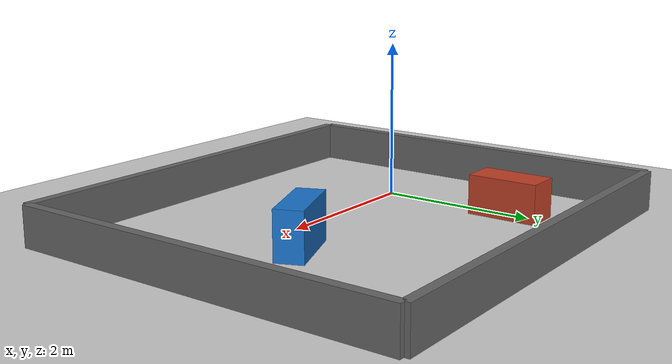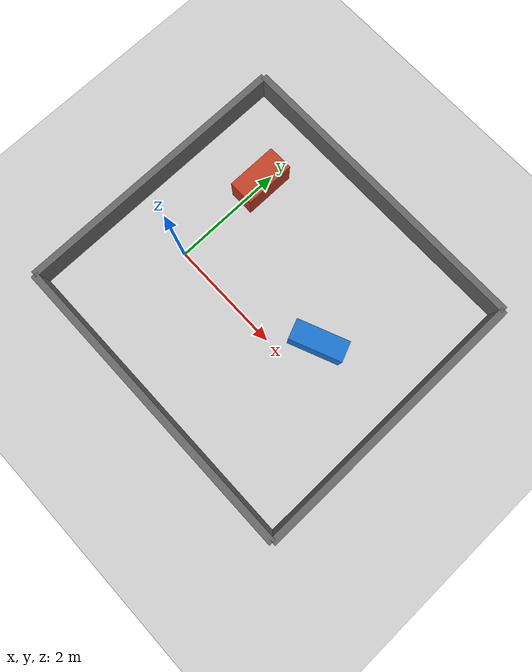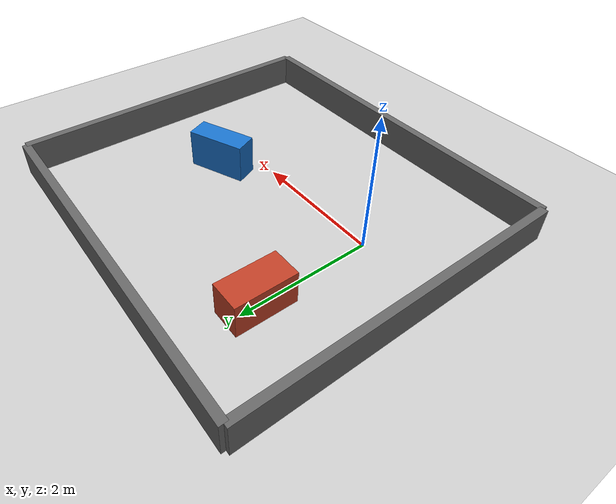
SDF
<?xml version="1.0"?>
<sdf version="1.7">
  <world name="default">
    <include>
      <uri>model://ground_plane</uri>
    </include>
    <include>
      <uri>model://sun</uri>
    </include>

    <gravity>0 0 -9.8</gravity>
    <physics type="ode">
      <max_step_size>0.01</max_step_size>
      <real_time_factor>1</real_time_factor>
      <real_time_update_rate>100</real_time_update_rate>
    </physics>
    <scene>
      <ambient>0.8 0.8 0.8 1</ambient>
      <background>0.53 0.81 0.92 1</background>
      <shadows>false</shadows>
    </scene>

    <model name="north_wall">
      <static>true</static>
      <pose>1.5 3.0 0.25 0 0 0</pose>
      <link name="link">
        <collision name="collision">
          <geometry><box><size>5.5 0.12 0.5</size></box></geometry>
        </collision>
        <visual name="visual">
          <geometry><box><size>5.5 0.12 0.5</size></box></geometry>
          <material><ambient>0.4 0.4 0.4 1</ambient></material>
        </visual>
      </link>
    </model>

    <model name="south_wall">
      <static>true</static>
      <pose>1.5 -2.0 0.25 0 0 0</pose>
      <link name="link">
        <collision name="collision">
          <geometry><box><size>5.5 0.12 0.5</size></box></geometry>
        </collision>
        <visual name="visual">
          <geometry><box><size>5.5 0.12 0.5</size></box></geometry>
          <material><ambient>0.4 0.4 0.4 1</ambient></material>
        </visual>
      </link>
    </model>

    <model name="west_wall">
      <static>true</static>
      <pose>-1.25 0.5 0.25 0 0 0</pose>
      <link name="link">
        <collision name="collision">
          <geometry><box><size>0.12 5.0 0.5</size></box></geometry>
        </collision>
        <visual name="visual">
          <geometry><box><size>0.12 5.0 0.5</size></box></geometry>
          <material><ambient>0.4 0.4 0.4 1</ambient></material>
        </visual>
      </link>
    </model>

    <model name="east_wall">
      <static>true</static>
      <pose>4.25 0.5 0.25 0 0 0</pose>
      <link name="link">
        <collision name="collision">
          <geometry><box><size>0.12 5.0 0.5</size></box></geometry>
        </collision>
        <visual name="visual">
          <geometry><box><size>0.12 5.0 0.5</size></box></geometry>
          <material><ambient>0.4 0.4 0.4 1</ambient></material>
        </visual>
      </link>
    </model>

    <model name="center_block">
      <static>true</static>
      <pose>2.6 0.55 0.3 0 0 0.4</pose>
      <link name="link">
        <collision name="collision">
          <geometry><box><size>0.9 0.35 0.6</size></box></geometry>
        </collision>
        <visual name="visual">
          <geometry><box><size>0.9 0.35 0.6</size></box></geometry>
          <material><ambient>0.1 0.45 0.8 1</ambient></material>
        </visual>
      </link>
    </model>

    <model name="corner_block">
      <static>true</static>
      <pose>0.0 1.75 0.25 0 0 0</pose>
      <link name="link">
        <collision name="collision">
          <geometry><box><size>0.45 0.9 0.5</size></box></geometry>
        </collision>
        <visual name="visual">
          <geometry><box><size>0.45 0.9 0.5</size></box></geometry>
          <material><ambient>0.75 0.25 0.15 1</ambient></material>
        </visual>
      </link>
    </model>

    <gui fullscreen="0">
      <camera name="user_camera">
        <pose>1.6 0.5 7.0 0 1.45 0</pose>
        <view_controller>orbit</view_controller>
        <projection_type>perspective</projection_type>
      </camera>
    </gui>
  </world>
</sdf>
